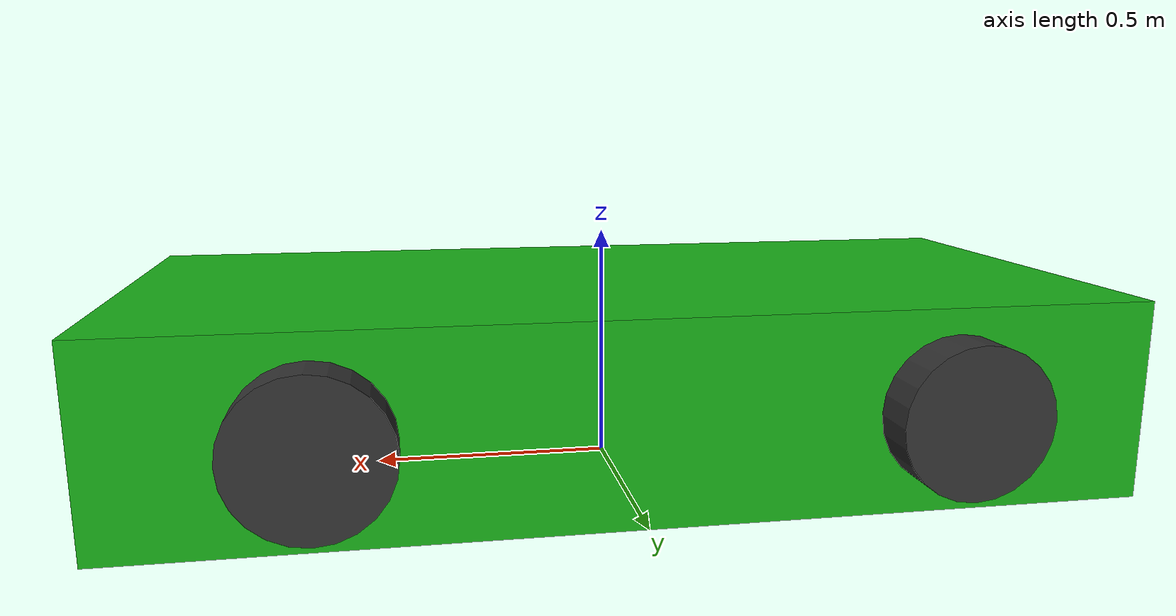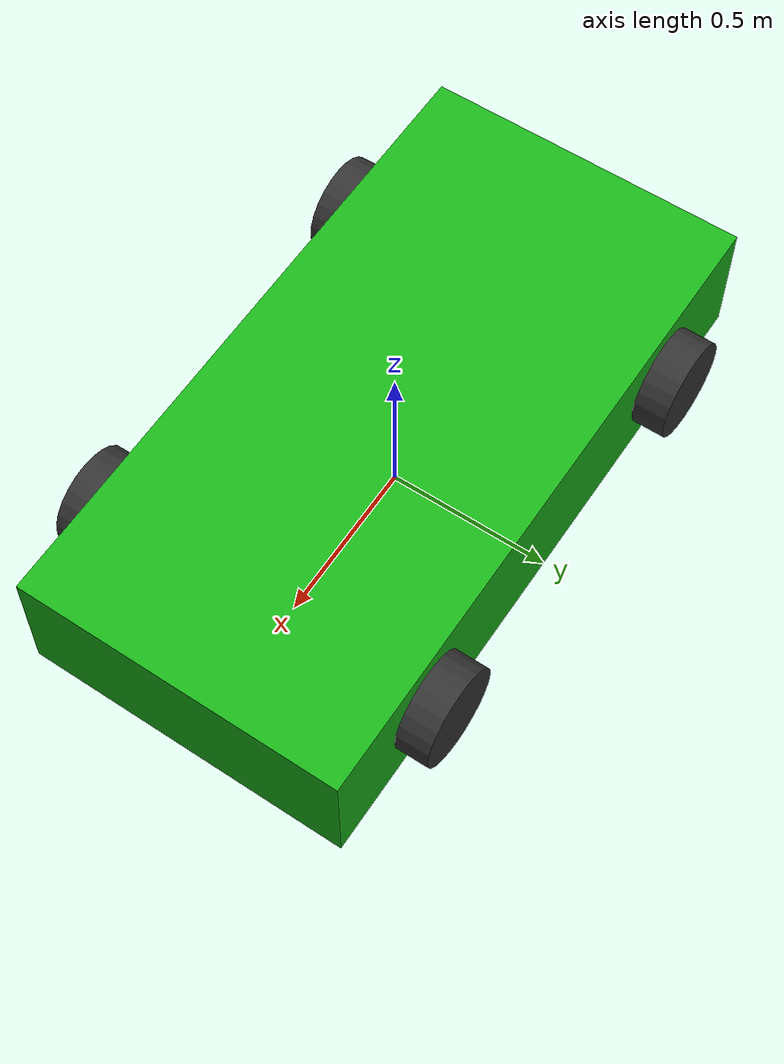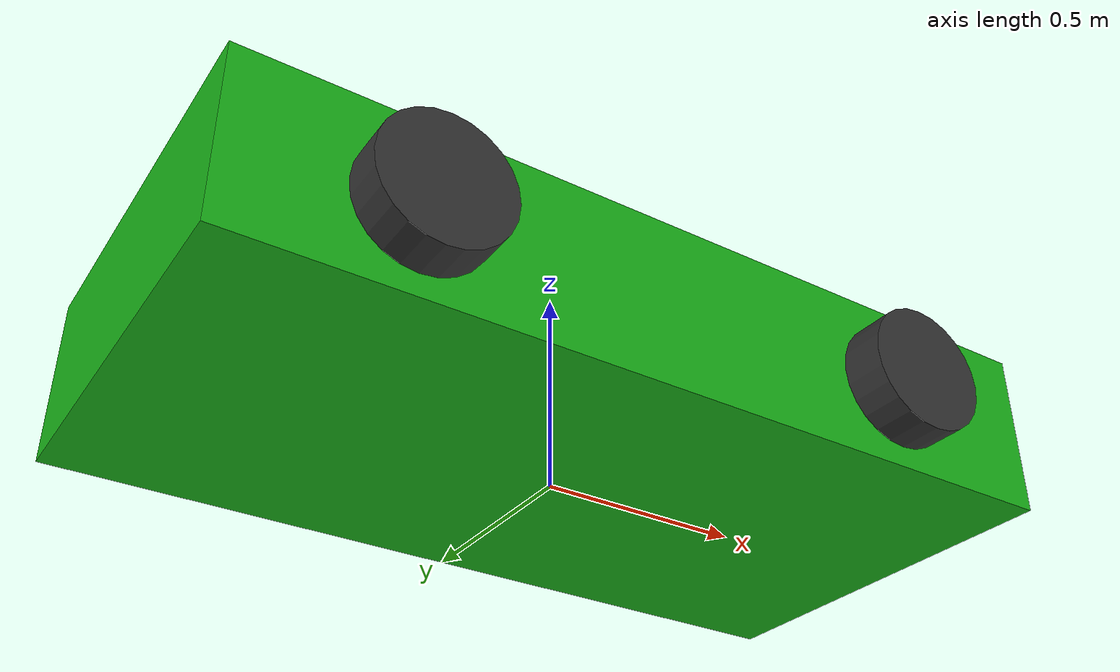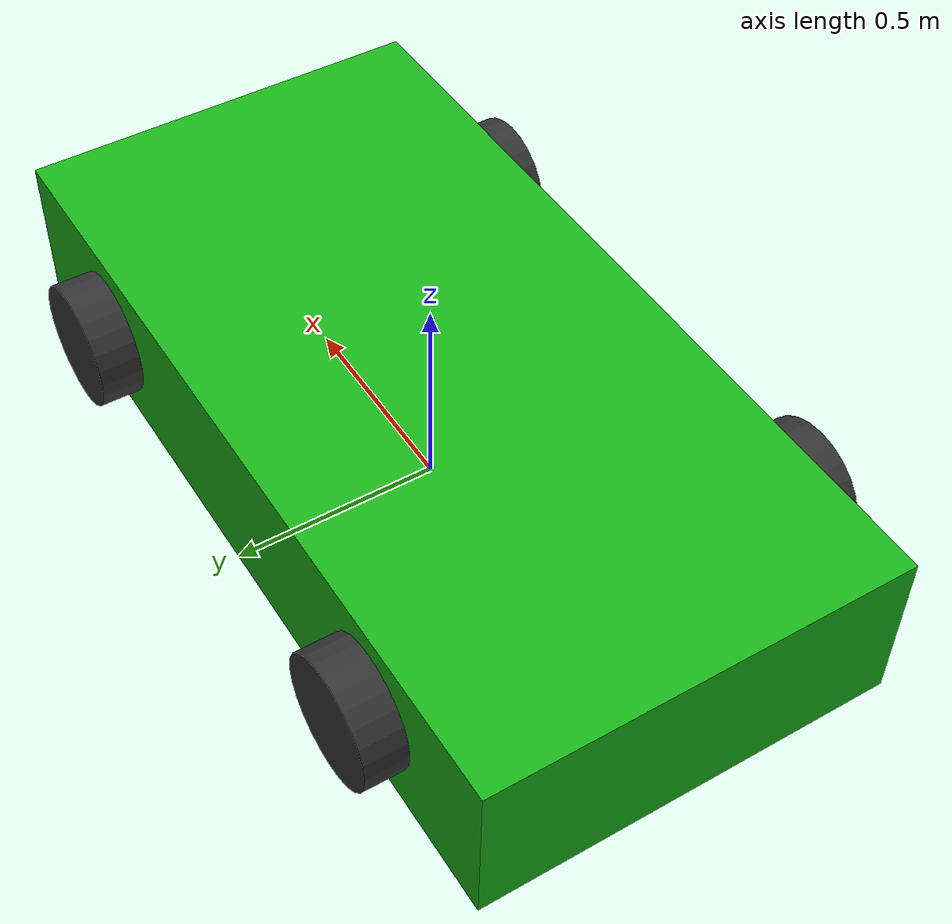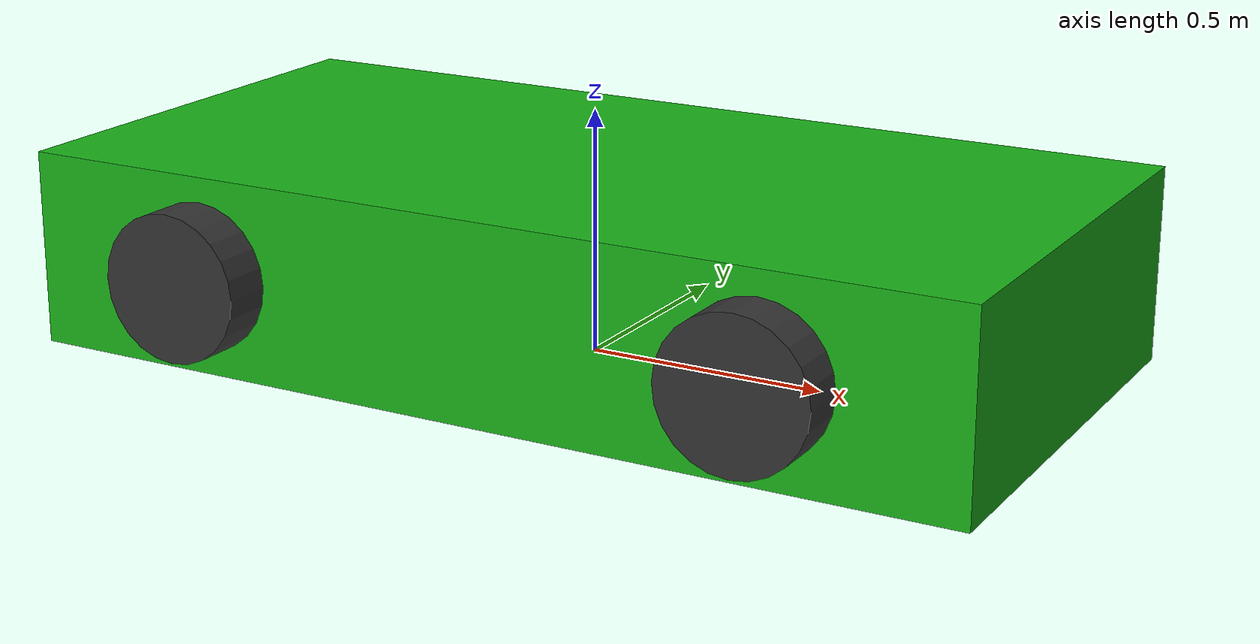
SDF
<?xml version="1.0" ?>
<sdf version="1.6">
  <model name="ackermann_vehicle">

    <!-- Base link (chassis) -->
    <link name="base_link">
      <pose>0 0 0.2 0 0 0</pose>
      <inertial>
        <mass>30.0</mass>
        <inertia>
          <ixx>1.0</ixx>
          <ixy>0</ixy>
          <ixz>0</ixz>
          <iyy>2.5</iyy>
          <iyz>0</iyz>
          <izz>3.0</izz>
        </inertia>
      </inertial>

      <!-- Chassis visual -->
      <visual name="chassis_visual">
        <geometry>
          <box>
            <size>2.0 1.0 0.4</size>
          </box>
        </geometry>
        <material>
          <ambient>0.1 0.5 0.1 1.0</ambient>
          <diffuse>0.1 0.7 0.1 1.0</diffuse>
          <specular>0.5 0.5 0.5 1.0</specular>
        </material>
      </visual>

      <!-- Chassis collision -->
      <collision name="chassis_collision">
        <geometry>
          <box>
            <size>2.0 1.0 0.4</size>
          </box>
        </geometry>
      </collision>

      <!-- GPS Sensor -->
      <sensor name="gps_sensor" type="navsat">
        <pose>0 0 0.3 0 0 0</pose>
        <always_on>true</always_on>
        <update_rate>10</update_rate>
        <topic>/mavros/global_position/global</topic>
        <navsat>
          <position_sensing>
            <horizontal>
              <noise type="gaussian">
                <mean>0.0</mean>
                <stddev>2e-4</stddev>
              </noise>
            </horizontal>
            <vertical>
              <noise type="gaussian">
                <mean>0.0</mean>
                <stddev>2e-4</stddev>
              </noise>
            </vertical>
          </position_sensing>
        </navsat>
      </sensor>

      <!-- IMU Sensor -->
      <sensor name="imu_sensor" type="imu">
        <pose>0 0 0.3 0 0 0</pose>
        <always_on>true</always_on>
        <update_rate>100</update_rate>
        <topic>/imu/data</topic>
      </sensor>

      <!-- LiDAR Sensor -->
      <sensor name="lidar_sensor" type="gpu_lidar">
        <pose>0 0 0.5 0 0 0</pose>
        <topic>/lidar</topic>
        <update_rate>10</update_rate>
        <lidar>
          <scan>
            <horizontal>
              <samples>640</samples>
              <resolution>1</resolution>
              <min_angle>-3.14159</min_angle>
              <max_angle>3.14159</max_angle>
            </horizontal>
            <vertical>
              <samples>16</samples>
              <resolution>1</resolution>
              <min_angle>-0.261799</min_angle>
              <max_angle>0.261799</max_angle>
            </vertical>
          </scan>
          <range>
            <min>0.1</min>
            <max>30.0</max>
            <resolution>0.01</resolution>
          </range>
        </lidar>
        <always_on>1</always_on>
        <visualize>true</visualize>
        <ignition_frame_id>velodyne</ignition_frame_id>
      </sensor>
    </link>

    <!-- Front Left Wheel -->
    <link name="front_left_wheel">
      <pose>0.6 0.55 0.2 -1.5707 0 0</pose>
      <inertial>
        <mass>3.0</mass>
        <inertia>
          <ixx>0.015</ixx>
          <ixy>0</ixy>
          <ixz>0</ixz>
          <iyy>0.015</iyy>
          <iyz>0</iyz>
          <izz>0.025</izz>
        </inertia>
      </inertial>
      <visual name="visual">
        <geometry>
          <cylinder>
            <radius>0.15</radius>
            <length>0.1</length>
          </cylinder>
        </geometry>
        <material>
          <ambient>0.1 0.1 0.1 1</ambient>
          <diffuse>0.2 0.2 0.2 1</diffuse>
        </material>
      </visual>
      <collision name="collision">
        <geometry>
          <cylinder>
            <radius>0.15</radius>
            <length>0.1</length>
          </cylinder>
        </geometry>
        <surface>
          <friction>
            <ode>
              <mu>1.0</mu>
              <mu2>1.0</mu2>
            </ode>
          </friction>
        </surface>
      </collision>
    </link>

    <!-- Front Right Wheel -->
    <link name="front_right_wheel">
      <pose>0.6 -0.55 0.2 -1.5707 0 0</pose>
      <inertial>
        <mass>3.0</mass>
        <inertia>
          <ixx>0.015</ixx>
          <ixy>0</ixy>
          <ixz>0</ixz>
          <iyy>0.015</iyy>
          <iyz>0</iyz>
          <izz>0.025</izz>
        </inertia>
      </inertial>
      <visual name="visual">
        <geometry>
          <cylinder>
            <radius>0.15</radius>
            <length>0.1</length>
          </cylinder>
        </geometry>
        <material>
          <ambient>0.1 0.1 0.1 1</ambient>
          <diffuse>0.2 0.2 0.2 1</diffuse>
        </material>
      </visual>
      <collision name="collision">
        <geometry>
          <cylinder>
            <radius>0.15</radius>
            <length>0.1</length>
          </cylinder>
        </geometry>
        <surface>
          <friction>
            <ode>
              <mu>1.0</mu>
              <mu2>1.0</mu2>
            </ode>
          </friction>
        </surface>
      </collision>
    </link>

    <!-- Rear Left Wheel -->
    <link name="rear_left_wheel">
      <pose>-0.6 0.55 0.2 -1.5707 0 0</pose>
      <inertial>
        <mass>3.0</mass>
        <inertia>
          <ixx>0.015</ixx>
          <ixy>0</ixy>
          <ixz>0</ixz>
          <iyy>0.015</iyy>
          <iyz>0</iyz>
          <izz>0.025</izz>
        </inertia>
      </inertial>
      <visual name="visual">
        <geometry>
          <cylinder>
            <radius>0.15</radius>
            <length>0.1</length>
          </cylinder>
        </geometry>
        <material>
          <ambient>0.1 0.1 0.1 1</ambient>
          <diffuse>0.2 0.2 0.2 1</diffuse>
        </material>
      </visual>
      <collision name="collision">
        <geometry>
          <cylinder>
            <radius>0.15</radius>
            <length>0.1</length>
          </cylinder>
        </geometry>
        <surface>
          <friction>
            <ode>
              <mu>1.0</mu>
              <mu2>1.0</mu2>
            </ode>
          </friction>
        </surface>
      </collision>
    </link>

    <!-- Rear Right Wheel -->
    <link name="rear_right_wheel">
      <pose>-0.6 -0.55 0.2 -1.5707 0 0</pose>
      <inertial>
        <mass>3.0</mass>
        <inertia>
          <ixx>0.015</ixx>
          <ixy>0</ixy>
          <ixz>0</ixz>
          <iyy>0.015</iyy>
          <iyz>0</iyz>
          <izz>0.025</izz>
        </inertia>
      </inertial>
      <visual name="visual">
        <geometry>
          <cylinder>
            <radius>0.15</radius>
            <length>0.1</length>
          </cylinder>
        </geometry>
        <material>
          <ambient>0.1 0.1 0.1 1</ambient>
          <diffuse>0.2 0.2 0.2 1</diffuse>
        </material>
      </visual>
      <collision name="collision">
        <geometry>
          <cylinder>
            <radius>0.15</radius>
            <length>0.1</length>
          </cylinder>
        </geometry>
        <surface>
          <friction>
            <ode>
              <mu>1.0</mu>
              <mu2>1.0</mu2>
            </ode>
          </friction>
        </surface>
      </collision>
    </link>

    <!-- Front Left Steering Knuckle (connects chassis to wheel) -->
    <link name="front_left_steering">
      <pose>0.6 0.55 0.2 0 0 0</pose>
      <inertial>
        <mass>1.0</mass>
        <inertia>
          <ixx>0.01</ixx>
          <ixy>0</ixy>
          <ixz>0</ixz>
          <iyy>0.01</iyy>
          <iyz>0</iyz>
          <izz>0.01</izz>
        </inertia>
      </inertial>
    </link>

    <!-- Front Right Steering Knuckle -->
    <link name="front_right_steering">
      <pose>0.6 -0.55 0.2 0 0 0</pose>
      <inertial>
        <mass>1.0</mass>
        <inertia>
          <ixx>0.01</ixx>
          <ixy>0</ixy>
          <ixz>0</ixz>
          <iyy>0.01</iyy>
          <iyz>0</iyz>
          <izz>0.01</izz>
        </inertia>
      </inertial>
    </link>

    <!-- Front Left Steering Joint (chassis to steering knuckle) -->
    <joint name="front_left_steer_joint" type="revolute">
      <parent>base_link</parent>
      <child>front_left_steering</child>
      <pose>0 0 0 0 0 0</pose>
      <axis>
        <xyz>0 0 1</xyz>
        <limit>
          <lower>-0.7</lower>
          <upper>0.7</upper>
        </limit>
        <dynamics>
          <damping>0.5</damping>
        </dynamics>
      </axis>
    </joint>

    <!-- Front Right Steering Joint -->
    <joint name="front_right_steer_joint" type="revolute">
      <parent>base_link</parent>
      <child>front_right_steering</child>
      <pose>0 0 0 0 0 0</pose>
      <axis>
        <xyz>0 0 1</xyz>
        <limit>
          <lower>-0.7</lower>
          <upper>0.7</upper>
        </limit>
        <dynamics>
          <damping>0.5</damping>
        </dynamics>
      </axis>
    </joint>

    <!-- Front Left Wheel Joint (steering knuckle to wheel) -->
    <joint name="front_left_wheel_joint" type="revolute">
      <parent>front_left_steering</parent>
      <child>front_left_wheel</child>
      <axis>
        <xyz>0 1 0</xyz>
        <limit>
          <lower>-1e16</lower>
          <upper>1e16</upper>
        </limit>
      </axis>
    </joint>

    <!-- Front Right Wheel Joint -->
    <joint name="front_right_wheel_joint" type="revolute">
      <parent>front_right_steering</parent>
      <child>front_right_wheel</child>
      <axis>
        <xyz>0 1 0</xyz>
        <limit>
          <lower>-1e16</lower>
          <upper>1e16</upper>
        </limit>
      </axis>
    </joint>

    <!-- Rear Left Wheel Joint -->
    <joint name="rear_left_wheel_joint" type="revolute">
      <parent>base_link</parent>
      <child>rear_left_wheel</child>
      <axis>
        <xyz>0 1 0</xyz>
        <limit>
          <lower>-1e16</lower>
          <upper>1e16</upper>
        </limit>
      </axis>
    </joint>

    <!-- Rear Right Wheel Joint -->
    <joint name="rear_right_wheel_joint" type="revolute">
      <parent>base_link</parent>
      <child>rear_right_wheel</child>
      <axis>
        <xyz>0 1 0</xyz>
        <limit>
          <lower>-1e16</lower>
          <upper>1e16</upper>
        </limit>
      </axis>
    </joint>

    <!-- Rear Wheel Drive (Differential Drive on rear wheels only) -->
    <plugin filename="ignition-gazebo-diff-drive-system" name="ignition::gazebo::systems::DiffDrive">
      <left_joint>rear_left_wheel_joint</left_joint>
      <right_joint>rear_right_wheel_joint</right_joint>
      <wheel_separation>1.1</wheel_separation>
      <wheel_radius>0.15</wheel_radius>
      <max_linear_acceleration>5.0</max_linear_acceleration>
      <min_linear_acceleration>-5.0</min_linear_acceleration>
      <max_angular_acceleration>3.0</max_angular_acceleration>
      <min_angular_acceleration>-3.0</min_angular_acceleration>
      <max_linear_velocity>10.0</max_linear_velocity>
      <min_linear_velocity>-10.0</min_linear_velocity>
      <max_angular_velocity>2.0</max_angular_velocity>
      <min_angular_velocity>-2.0</min_angular_velocity>
      <topic>/cmd_vel</topic>
      <odom_topic>/odom</odom_topic>
      <frame_id>odom</frame_id>
      <child_frame_id>base_link</child_frame_id>
    </plugin>

    <!-- Steering Control (Front Left Wheel) -->
    <plugin filename="ignition-gazebo-joint-position-controller-system" name="ignition::gazebo::systems::JointPositionController">
      <joint_name>front_left_steer_joint</joint_name>
      <topic>/steering/front_left</topic>
      <p_gain>10</p_gain>
      <i_gain>0.5</i_gain>
      <d_gain>0.1</d_gain>
      <i_max>1</i_max>
      <i_min>-1</i_min>
      <cmd_max>100</cmd_max>
      <cmd_min>-100</cmd_min>
    </plugin>

    <!-- Steering Control (Front Right Wheel) -->
    <plugin filename="ignition-gazebo-joint-position-controller-system" name="ignition::gazebo::systems::JointPositionController">
      <joint_name>front_right_steer_joint</joint_name>
      <topic>/steering/front_right</topic>
      <p_gain>10</p_gain>
      <i_gain>0.5</i_gain>
      <d_gain>0.1</d_gain>
      <i_max>1</i_max>
      <i_min>-1</i_min>
      <cmd_max>100</cmd_max>
      <cmd_min>-100</cmd_min>
    </plugin>

  </model>
</sdf>
